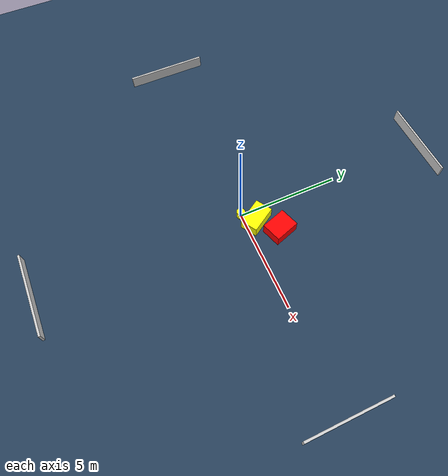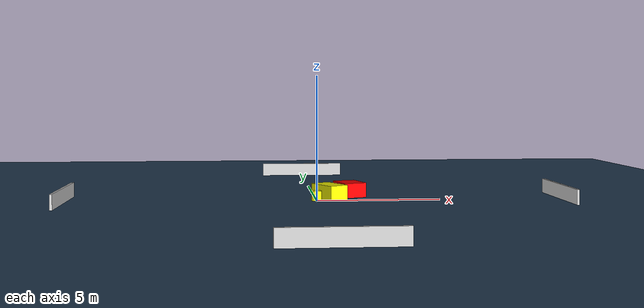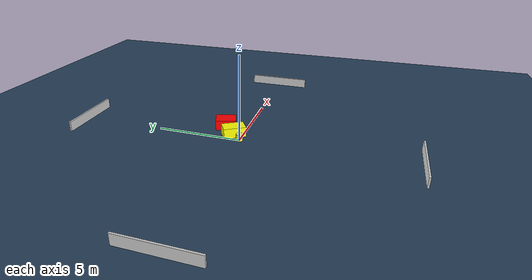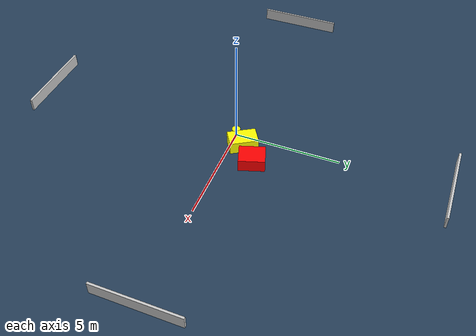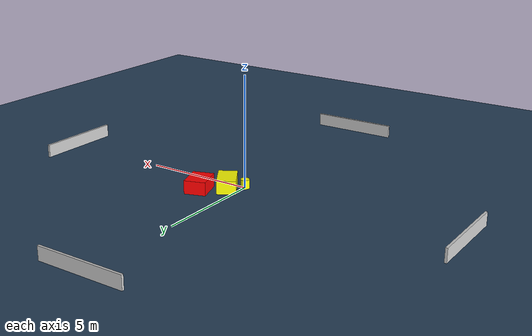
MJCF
<?xml version="1.0" ?>
<mujoco model="generated_environment">
  <option timestep="0.01" integrator="RK4" cone="elliptic"/>
  <default>
    <geom density="1"/>
  </default>
  <asset>
    <texture builtin="gradient" height="3072" name="skybox" rgb1="0.3 0.5 0.7" rgb2="0 0 0" type="skybox" width="512"/>
    <texture builtin="checker" height="300" name="groundplane" rgb1="0.2 0.3 0.4" rgb2="0.1 0.2 0.3" type="2d" width="300"/>
    <material name="groundplane" reflectance="0.2" texrepeat="5 5" texture="groundplane"/>
  </asset>
  <worldbody>
    <light dir="0 0 -1" directional="true" pos="0 0 1.5"/>
    <geom condim="3" friction="0.5 0.005 0.001" material="groundplane" name="floor" pos="0 0 0" size="0 0 0.05" type="plane"/>
    <body name="walls">
      <geom name="wall_1" condim="4" pos="-10.0 0.0 0.3" rgba="0.800000011920929 0.800000011920929 0.800000011920929 1.0" size="0.05 2.0 0.3" type="box"/>
      <geom name="wall_2" condim="4" pos="10.0 0.0 0.3" rgba="0.800000011920929 0.800000011920929 0.800000011920929 1.0" size="0.05 2.0 0.3" type="box"/>
      <geom name="wall_3" condim="4" pos="0.0 -10.0 0.3" rgba="0.800000011920929 0.800000011920929 0.800000011920929 1.0" size="2.0 0.05 0.3" type="box"/>
      <geom name="wall_4" condim="4" pos="0.0 10.0 0.3" rgba="0.800000011920929 0.800000011920929 0.800000011920929 1.0" size="2.0 0.05 0.3" type="box"/>
    </body>
    <body name="robot">
      <joint name="joint_x" type="slide" pos="0 0 0" axis="1 0 0"/>
      <joint name="joint_y" type="slide" pos="0 0 0" axis="0 1 0"/>
      <geom name="robot" type="cylinder" pos="0.0 0.0 0.2" size="0.2 0.2 0.0" mass="5.0" friction="1.0 0.005 0.0001" condim="4" rgba="1.0 1.0 0.0 1.0"/>
    </body>
    <body name="obstacle_1_movable">
      <geom name="obstacle_1_movable" condim="4" pos="0.5677150157843379 0.5436929398098208 0.3" euler="0 0 121.70939659327527" friction="0.0 0.005 0.001" rgba="1.0 1.0 0.0 1.0" size="0.6687312952713085 0.4227352174395458 0.3" type="box" mass="0.1"/>
      <joint type="free"/>
    </body>
    <body name="obstacle_2_static">
      <geom name="obstacle_2_static" condim="4" pos="1.4764573233950677 1.3381824815381438 0.3" euler="0 0 108.2422360962541" friction="0.0 0.005 0.001" rgba="1.0 0.0 0.0 1.0" size="0.6053632673534806 0.4820569811039059 0.3" type="box"/>
    </body>
  </worldbody>
  <actuator>
    <motor name="actuator_x" joint="joint_x" gear="1" ctrlrange="-1 1"/>
    <motor name="actuator_y" joint="joint_y" gear="1" ctrlrange="-1 1"/>
  </actuator>
</mujoco>
